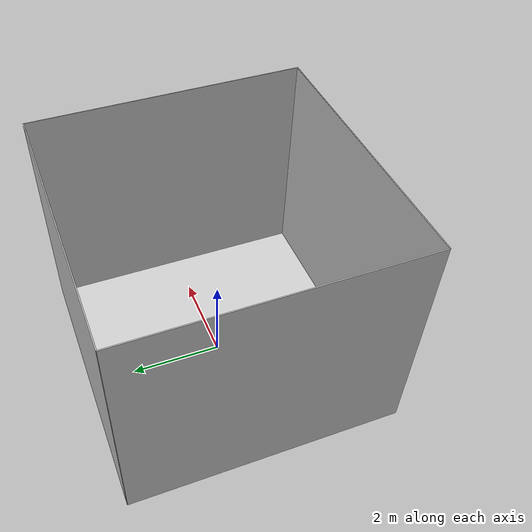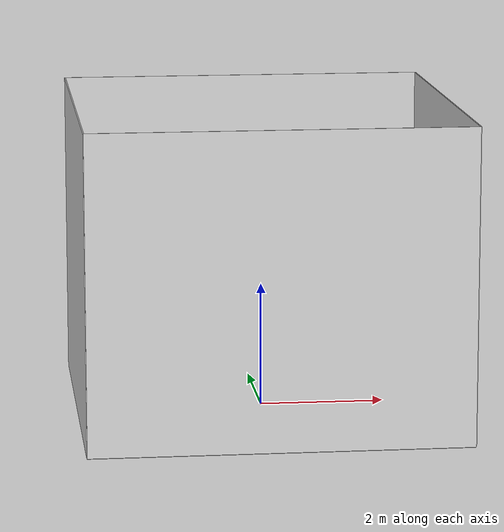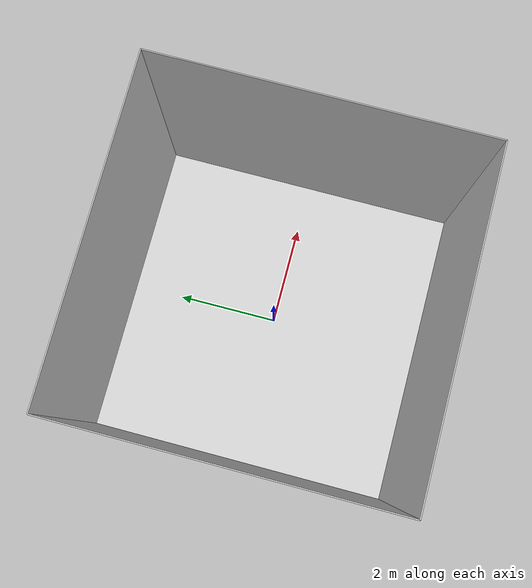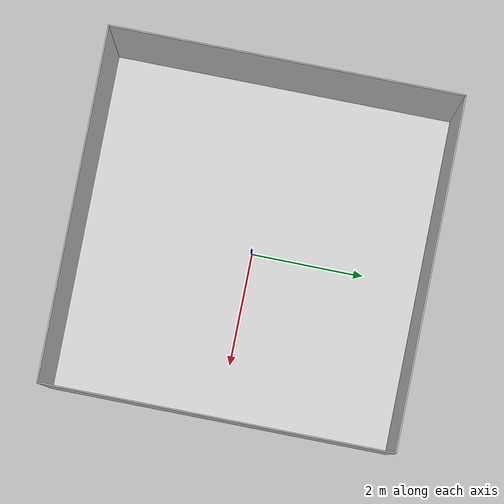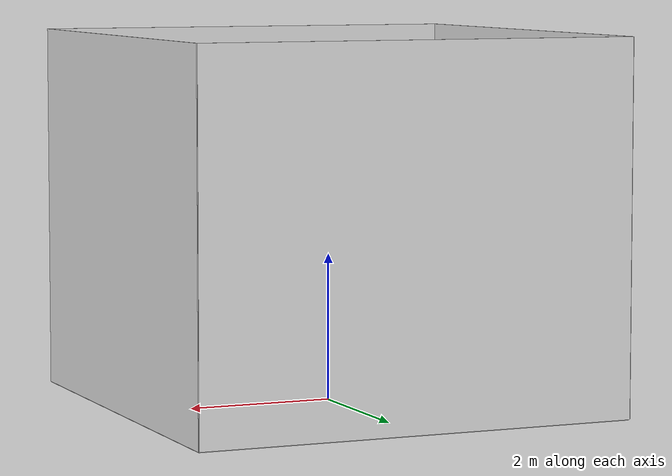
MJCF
<mujoco model="empty_arena">
  <asset>
    <texture builtin="gradient" height="256" rgb1=".9 .9 1." rgb2=".2 .3 .4" type="skybox" width="256"/>
    <texture file="../textures/light-gray-floor-tile.png" type="2d" name="texplane"/>
    <material name="floorplane" reflectance="0.01" shininess="0.0" specular="0.0" texrepeat="2 2" texture="texplane" texuniform="true"/>
    <!-- plaster walls -->
    <texture file="../textures/light-gray-plaster.png" type="2d" name="tex-light-gray-plaster"/>
    <material name="walls_mat" reflectance="0.0" shininess="0.1" specular="0.1" texrepeat="3 3" texture="tex-light-gray-plaster" texuniform="true" />

  </asset>
  <worldbody>
    <!-- Floor -->
    <geom condim="3" group="1" material="floorplane" name="floor" pos="0 0 0" size="3 3 .125" type="plane"/>
    <!-- Walls (visual only) -->
    <geom pos="0 3 2.5" quat="0.7071 0.7071 0 0" size="3 2.5 0.01" type="box" conaffinity="0" contype="0" group="1" name="wall_left_visual" material="walls_mat"/>
    <geom pos="0 -3 2.5" quat="0.7071 -0.7071 0 0" size="3 2.5 0.01" type="box" conaffinity="0" contype="0" group="1" name="wall_right_visual" material="walls_mat"/>
    <geom pos="-3 0 2.5" quat="0.5 0.5 0.5 0.5" size="3 2.5 0.01" type="box" conaffinity="0" contype="0" group="1" name="wall_rear_visual" material="walls_mat"/>
    <geom pos="3 0 2.5" quat="0.5 0.5 -0.5 -0.5" size="3 2.5 0.01" type="box" conaffinity="0" contype="0" group="1" name="wall_front_visual" material="walls_mat"/>
    <light pos="1.0 1.0 1.5" dir="-0.2 -0.2 -1" specular="0.3 0.3 0.3" directional="true" castshadow="false"/>
  </worldbody>
</mujoco>
